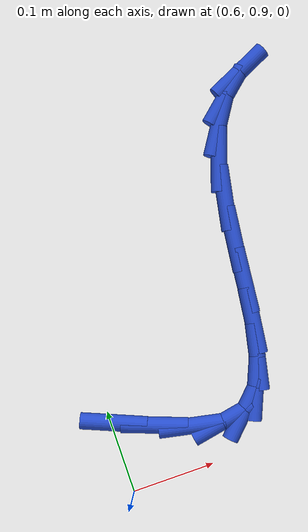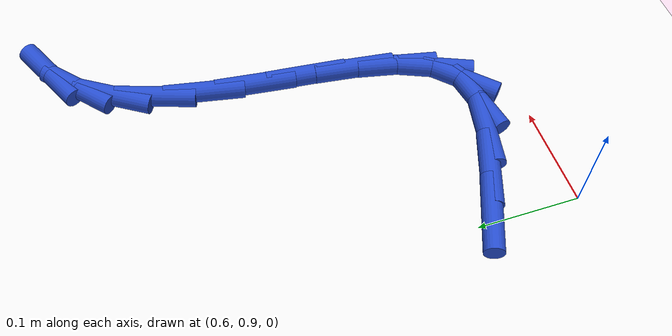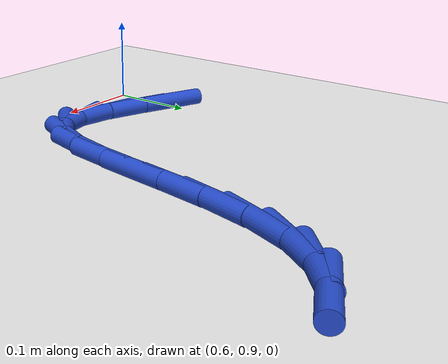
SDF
<sdf version="1.6">
 <world name="default">
  <model name="ground_plane">
   <static>1</static>
   <link name="link">
    <collision name="collision">
     <geometry><plane><normal>0 0 1</normal><size>100 100</size></plane></geometry>
     <surface><friction><ode><mu>100</mu><mu2>50</mu2></ode></friction></surface>
    </collision>
    <visual name="visual">
     <cast_shadows>0</cast_shadows>
     <geometry><plane><normal>0 0 1</normal><size>100 100</size></plane></geometry>
     <material>
      <script><uri>file://media/materials/scripts/gazebo.material</uri><name>Gazebo/WhiteGlow</name></script>
     </material>
    </visual>
   </link>
  </model>
  <model name="line">
   <link name="link_29">
    <pose>0.6044847584894163 0.9861534842098224 0.01 0 1.57 -0.39229845676426855</pose>
    <collision name="collision">
     <geometry><cylinder><radius>0.01</radius><length>0.08</length></cylinder></geometry>
    </collision>
    <visual name="visual">
     <material>
      <script><name>Gazebo/Blue</name><uri>file://media/materials/scripts/gazebo.material</uri></script>
     </material>
     <geometry><cylinder><radius>0.01</radius><length>0.08</length></cylinder></geometry>
    </visual>
   </link>
   <link name="link_30">
    <pose>0.6492605328503174 0.9676277637339419 0.01 0 1.57 -0.3521428855583303</pose>
    <collision name="collision">
     <geometry><cylinder><radius>0.01</radius><length>0.08</length></cylinder></geometry>
    </collision>
    <visual name="visual">
     <material>
      <script><name>Gazebo/Blue</name><uri>file://media/materials/scripts/gazebo.material</uri></script>
     </material>
     <geometry><cylinder><radius>0.01</radius><length>0.08</length></cylinder></geometry>
    </visual>
   </link>
   <link name="link_31">
    <pose>0.6912281915806306 0.9522063775614948 0.01 0 1.57 -0.19857816127370922</pose>
    <collision name="collision">
     <geometry><cylinder><radius>0.01</radius><length>0.08</length></cylinder></geometry>
    </collision>
    <visual name="visual">
     <material>
      <script><name>Gazebo/Blue</name><uri>file://media/materials/scripts/gazebo.material</uri></script>
     </material>
     <geometry><cylinder><radius>0.01</radius><length>0.08</length></cylinder></geometry>
    </visual>
   </link>
   <link name="link_32">
    <pose>0.7280382362764611 0.9447990850150074 0.01 0 1.57 0.185271720738517</pose>
    <collision name="collision">
     <geometry><cylinder><radius>0.01</radius><length>0.08</length></cylinder></geometry>
    </collision>
    <visual name="visual">
     <material>
      <script><name>Gazebo/Blue</name><uri>file://media/materials/scripts/gazebo.material</uri></script>
     </material>
     <geometry><cylinder><radius>0.01</radius><length>0.08</length></cylinder></geometry>
    </visual>
   </link>
   <link name="link_33">
    <pose>0.7573529104168982 0.9502932732521467 0.01 0 1.57 0.7816259062802736</pose>
    <collision name="collision">
     <geometry><cylinder><radius>0.01</radius><length>0.08</length></cylinder></geometry>
    </collision>
    <visual name="visual">
     <material>
      <script><name>Gazebo/Blue</name><uri>file://media/materials/scripts/gazebo.material</uri></script>
     </material>
     <geometry><cylinder><radius>0.01</radius><length>0.08</length></cylinder></geometry>
    </visual>
   </link>
   <link name="link_34">
    <pose>0.7781968417413209 0.9709805374854211 0.01 0 1.57 1.1712888422678254</pose>
    <collision name="collision">
     <geometry><cylinder><radius>0.01</radius><length>0.08</length></cylinder></geometry>
    </collision>
    <visual name="visual">
     <material>
      <script><name>Gazebo/Blue</name><uri>file://media/materials/scripts/gazebo.material</uri></script>
     </material>
     <geometry><cylinder><radius>0.01</radius><length>0.08</length></cylinder></geometry>
    </visual>
   </link>
   <link name="link_35">
    <pose>0.792209776385435 1.0041698087358348 0.01 0 1.57 1.3591513011999974</pose>
    <collision name="collision">
     <geometry><cylinder><radius>0.01</radius><length>0.08</length></cylinder></geometry>
    </collision>
    <visual name="visual">
     <material>
      <script><name>Gazebo/Blue</name><uri>file://media/materials/scripts/gazebo.material</uri></script>
     </material>
     <geometry><cylinder><radius>0.01</radius><length>0.08</length></cylinder></geometry>
    </visual>
   </link>
   <link name="link_36">
    <pose>0.801327661819899 1.0466056566604007 0.01 0 1.57 1.4442987302547403</pose>
    <collision name="collision">
     <geometry><cylinder><radius>0.01</radius><length>0.08</length></cylinder></geometry>
    </collision>
    <visual name="visual">
     <material>
      <script><name>Gazebo/Blue</name><uri>file://media/materials/scripts/gazebo.material</uri></script>
     </material>
     <geometry><cylinder><radius>0.01</radius><length>0.08</length></cylinder></geometry>
    </visual>
   </link>
   <link name="link_37">
    <pose>0.8074864455153722 1.0950326509161312 0.01 0 1.57 1.4707530652104115</pose>
    <collision name="collision">
     <geometry><cylinder><radius>0.01</radius><length>0.08</length></cylinder></geometry>
    </collision>
    <visual name="visual">
     <material>
      <script><name>Gazebo/Blue</name><uri>file://media/materials/scripts/gazebo.material</uri></script>
     </material>
     <geometry><cylinder><radius>0.01</radius><length>0.08</length></cylinder></geometry>
    </visual>
   </link>
   <link name="link_38">
    <pose>0.8126220749425132 1.146195361160038 0.01 0 1.57 1.451926823432549</pose>
    <collision name="collision">
     <geometry><cylinder><radius>0.01</radius><length>0.08</length></cylinder></geometry>
    </collision>
    <visual name="visual">
     <material>
      <script><name>Gazebo/Blue</name><uri>file://media/materials/scripts/gazebo.material</uri></script>
     </material>
     <geometry><cylinder><radius>0.01</radius><length>0.08</length></cylinder></geometry>
    </visual>
   </link>
   <link name="link_39">
    <pose>0.8186704975719811 1.196838357049134 0.01 0 1.57 1.3831935378688356</pose>
    <collision name="collision">
     <geometry><cylinder><radius>0.01</radius><length>0.08</length></cylinder></geometry>
    </collision>
    <visual name="visual">
     <material>
      <script><name>Gazebo/Blue</name><uri>file://media/materials/scripts/gazebo.material</uri></script>
     </material>
     <geometry><cylinder><radius>0.01</radius><length>0.08</length></cylinder></geometry>
    </visual>
   </link>
   <link name="link_40">
    <pose>0.8275676608744351 1.2437062082404324 0.01 0 1.57 1.2401859303522513</pose>
    <collision name="collision">
     <geometry><cylinder><radius>0.01</radius><length>0.08</length></cylinder></geometry>
    </collision>
    <visual name="visual">
     <material>
      <script><name>Gazebo/Blue</name><uri>file://media/materials/scripts/gazebo.material</uri></script>
     </material>
     <geometry><cylinder><radius>0.01</radius><length>0.08</length></cylinder></geometry>
    </visual>
   </link>
   <link name="link_41">
    <pose>0.8412434088824086 1.2835531437496128 0.01 0 1.57 1.0040865140780024</pose>
    <collision name="collision">
     <geometry><cylinder><radius>0.01</radius><length>0.08</length></cylinder></geometry>
    </collision>
    <visual name="visual">
     <material>
      <script><name>Gazebo/Blue</name><uri>file://media/materials/scripts/gazebo.material</uri></script>
     </material>
     <geometry><cylinder><radius>0.01</radius><length>0.08</length></cylinder></geometry>
    </visual>
   </link>
   <link name="link_42">
    <pose>0.8608497418289937 1.3143644155162704 0.01 0 1.57 0.7227316140498389</pose>
    <collision name="collision">
     <geometry><cylinder><radius>0.01</radius><length>0.08</length></cylinder></geometry>
    </collision>
    <visual name="visual">
     <material>
      <script><name>Gazebo/Blue</name><uri>file://media/materials/scripts/gazebo.material</uri></script>
     </material>
     <geometry><cylinder><radius>0.01</radius><length>0.08</length></cylinder></geometry>
    </visual>
   </link>
   <link name="link_43">
    <pose>0.8860063430584073 1.3365503346220229 0.01 0 1.57 0.4416688211667742</pose>
    <collision name="collision">
     <geometry><cylinder><radius>0.01</radius><length>0.08</length></cylinder></geometry>
    </collision>
    <visual name="visual">
     <material>
      <script><name>Gazebo/Blue</name><uri>file://media/materials/scripts/gazebo.material</uri></script>
     </material>
     <geometry><cylinder><radius>0.01</radius><length>0.08</length></cylinder></geometry>
    </visual>
   </link>
  </model>
 </world>
</sdf>
